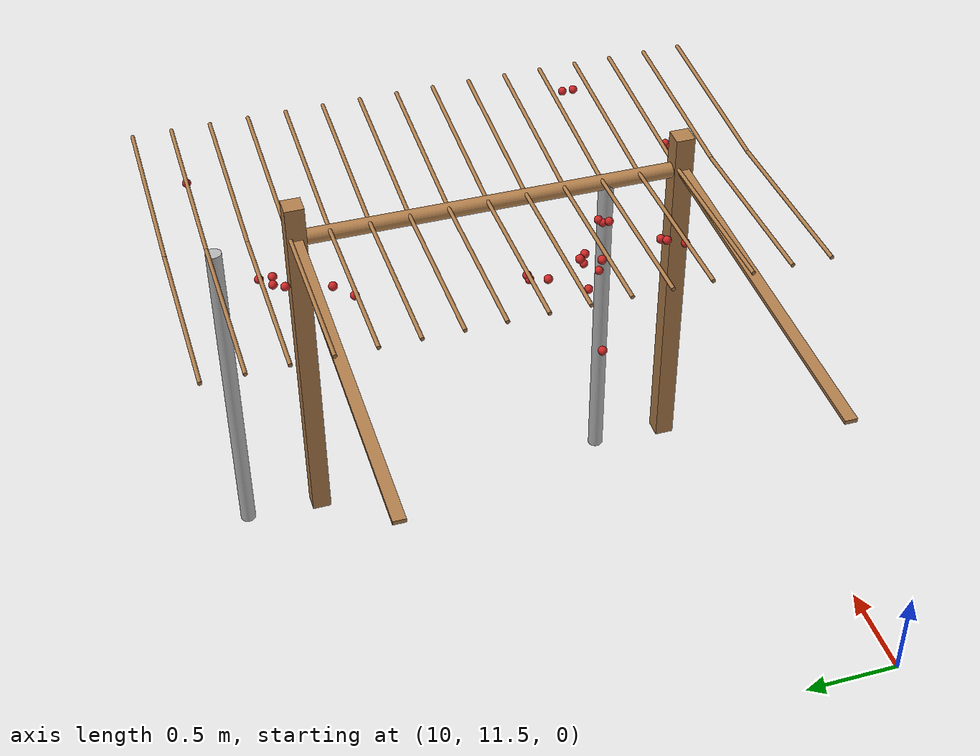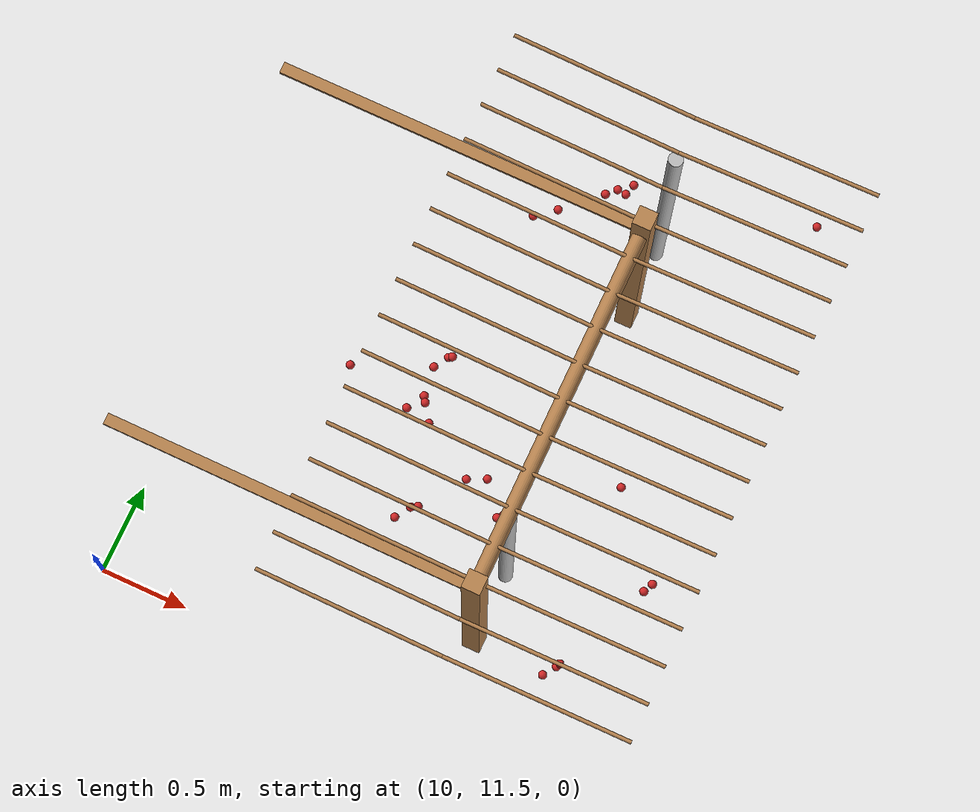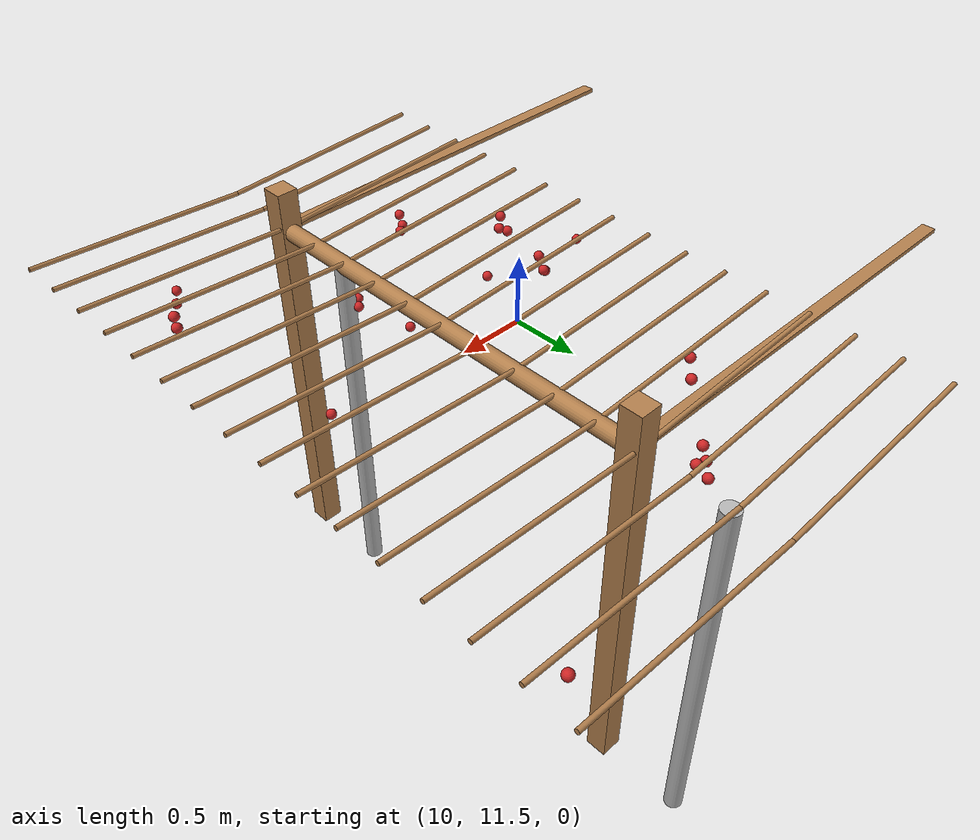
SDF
<sdf version="1.4">
 <model name="pergola">
  <include><name>post_72</name><pose>12.0 12.0 0 0 0 0</pose><uri>model://post</uri></include>
  <include><name>post_73</name><pose>12.0 14.0 0 0 0 0</pose><uri>model://post</uri></include>
  <link name="beam_61">
   <pose>11.0 12.0 1.81 0 0 0</pose>
   <collision name="collision"><geometry><box><size>2.0 0.06 0.02</size></box></geometry></collision>
   <visual name="visual">
    <geometry><box><size>2.0 0.06 0.02</size></box></geometry>
    <material><script><name>Gazebo/Wood</name></script></material>
   </visual>
   <inertial>
    <mass>5</mass>
    <inertia>
     <ixx>0.0016666666666666668</ixx>
     <ixy>0.0</ixy>
     <ixz>0.0</ixz>
     <iyy>1.6681666666666664</iyy>
     <iyz>0.0</iyz>
     <izz>1.6668333333333332</izz>
    </inertia>
   </inertial>
  </link>
  <link name="beam_62">
   <pose>11.0 14.0 1.81 0 0 0</pose>
   <collision name="collision"><geometry><box><size>2.0 0.06 0.02</size></box></geometry></collision>
   <visual name="visual">
    <geometry><box><size>2.0 0.06 0.02</size></box></geometry>
    <material><script><name>Gazebo/Wood</name></script></material>
   </visual>
   <inertial>
    <mass>5</mass>
    <inertia>
     <ixx>0.0016666666666666668</ixx>
     <ixy>0.0</ixy>
     <ixz>0.0</ixz>
     <iyy>1.6681666666666664</iyy>
     <iyz>0.0</iyz>
     <izz>1.6668333333333332</izz>
    </inertia>
   </inertial>
  </link>
  <include><name>tree_66</name><pose>12.0 12.4 0 0 0 0</pose><uri>model://tree_trunk</uri></include>
  <include><name>tree_67</name><pose>12.0 14.4 0 0 0 0</pose><uri>model://tree_trunk</uri></include>
  <link name="baseBranch_66">
   <pose>12.0 13.0 1.8 1.5707963267948966 0 0</pose>
   <collision name="collision">
    <geometry><cylinder><radius>0.04</radius><length>1.94</length></cylinder></geometry>
   </collision>
   <visual name="visual">
    <geometry><cylinder><radius>0.04</radius><length>1.94</length></cylinder></geometry>
    <material><script><name>Gazebo/WoodFloor</name></script></material>
   </visual>
   <inertial>
    <mass>10</mass>
    <inertia>
     <ixx>3.140333333333333</ixx>
     <ixy>0.0</ixy>
     <ixz>0.0</ixz>
     <iyy>3.140333333333333</iyy>
     <iyz>0.0</iyz>
     <izz>0.008</izz>
    </inertia>
   </inertial>
  </link>
  <link name="vine_1117">
   <pose>11.5 11.63 1.85 0 -1.5208379310729538 0</pose>
   <collision name="collision">
    <geometry><cylinder><radius>0.01</radius><length>1.0012492197250393</length></cylinder></geometry>
   </collision>
   <visual name="visual">
    <geometry><cylinder><radius>0.01</radius><length>1.0012492197250393</length></cylinder></geometry>
    <material><script><name>Gazebo/WoodFloor</name></script></material>
   </visual>
   <inertial>
    <mass>5</mass>
    <inertia>
     <ixx>0.41783333333333345</ixx>
     <ixy>0.0</ixy>
     <ixz>0.0</ixz>
     <iyy>0.41783333333333345</iyy>
     <iyz>0.0</iyz>
     <izz>0.00025</izz>
    </inertia>
   </inertial>
  </link>
  <link name="vine_1119">
   <pose>11.5 11.83 1.85 0 -1.5208379310729538 0</pose>
   <collision name="collision">
    <geometry><cylinder><radius>0.01</radius><length>1.0012492197250393</length></cylinder></geometry>
   </collision>
   <visual name="visual">
    <geometry><cylinder><radius>0.01</radius><length>1.0012492197250393</length></cylinder></geometry>
    <material><script><name>Gazebo/WoodFloor</name></script></material>
   </visual>
   <inertial>
    <mass>5</mass>
    <inertia>
     <ixx>0.41783333333333345</ixx>
     <ixy>0.0</ixy>
     <ixz>0.0</ixz>
     <iyy>0.41783333333333345</iyy>
     <iyz>0.0</iyz>
     <izz>0.00025</izz>
    </inertia>
   </inertial>
  </link>
  <link name="vine_1121">
   <pose>11.5 12.03 1.85 0 -1.5208379310729538 0</pose>
   <collision name="collision">
    <geometry><cylinder><radius>0.01</radius><length>1.0012492197250393</length></cylinder></geometry>
   </collision>
   <visual name="visual">
    <geometry><cylinder><radius>0.01</radius><length>1.0012492197250393</length></cylinder></geometry>
    <material><script><name>Gazebo/WoodFloor</name></script></material>
   </visual>
   <inertial>
    <mass>5</mass>
    <inertia>
     <ixx>0.41783333333333345</ixx>
     <ixy>0.0</ixy>
     <ixz>0.0</ixz>
     <iyy>0.41783333333333345</iyy>
     <iyz>0.0</iyz>
     <izz>0.00025</izz>
    </inertia>
   </inertial>
  </link>
  <link name="vine_1123">
   <pose>11.5 12.23 1.85 0 -1.5208379310729538 0</pose>
   <collision name="collision">
    <geometry><cylinder><radius>0.01</radius><length>1.0012492197250393</length></cylinder></geometry>
   </collision>
   <visual name="visual">
    <geometry><cylinder><radius>0.01</radius><length>1.0012492197250393</length></cylinder></geometry>
    <material><script><name>Gazebo/WoodFloor</name></script></material>
   </visual>
   <inertial>
    <mass>5</mass>
    <inertia>
     <ixx>0.41783333333333345</ixx>
     <ixy>0.0</ixy>
     <ixz>0.0</ixz>
     <iyy>0.41783333333333345</iyy>
     <iyz>0.0</iyz>
     <izz>0.00025</izz>
    </inertia>
   </inertial>
  </link>
  <link name="vine_1125">
   <pose>11.5 12.43 1.85 0 -1.5208379310729538 0</pose>
   <collision name="collision">
    <geometry><cylinder><radius>0.01</radius><length>1.0012492197250393</length></cylinder></geometry>
   </collision>
   <visual name="visual">
    <geometry><cylinder><radius>0.01</radius><length>1.0012492197250393</length></cylinder></geometry>
    <material><script><name>Gazebo/WoodFloor</name></script></material>
   </visual>
   <inertial>
    <mass>5</mass>
    <inertia>
     <ixx>0.41783333333333345</ixx>
     <ixy>0.0</ixy>
     <ixz>0.0</ixz>
     <iyy>0.41783333333333345</iyy>
     <iyz>0.0</iyz>
     <izz>0.00025</izz>
    </inertia>
   </inertial>
  </link>
  <link name="vine_1127">
   <pose>11.5 12.63 1.85 0 -1.5208379310729538 0</pose>
   <collision name="collision">
    <geometry><cylinder><radius>0.01</radius><length>1.0012492197250393</length></cylinder></geometry>
   </collision>
   <visual name="visual">
    <geometry><cylinder><radius>0.01</radius><length>1.0012492197250393</length></cylinder></geometry>
    <material><script><name>Gazebo/WoodFloor</name></script></material>
   </visual>
   <inertial>
    <mass>5</mass>
    <inertia>
     <ixx>0.41783333333333345</ixx>
     <ixy>0.0</ixy>
     <ixz>0.0</ixz>
     <iyy>0.41783333333333345</iyy>
     <iyz>0.0</iyz>
     <izz>0.00025</izz>
    </inertia>
   </inertial>
  </link>
  <link name="vine_1129">
   <pose>11.5 12.83 1.85 0 -1.5208379310729538 0</pose>
   <collision name="collision">
    <geometry><cylinder><radius>0.01</radius><length>1.0012492197250393</length></cylinder></geometry>
   </collision>
   <visual name="visual">
    <geometry><cylinder><radius>0.01</radius><length>1.0012492197250393</length></cylinder></geometry>
    <material><script><name>Gazebo/WoodFloor</name></script></material>
   </visual>
   <inertial>
    <mass>5</mass>
    <inertia>
     <ixx>0.41783333333333345</ixx>
     <ixy>0.0</ixy>
     <ixz>0.0</ixz>
     <iyy>0.41783333333333345</iyy>
     <iyz>0.0</iyz>
     <izz>0.00025</izz>
    </inertia>
   </inertial>
  </link>
  <link name="vine_1131">
   <pose>11.5 13.03 1.85 0 -1.5208379310729538 0</pose>
   <collision name="collision">
    <geometry><cylinder><radius>0.01</radius><length>1.0012492197250393</length></cylinder></geometry>
   </collision>
   <visual name="visual">
    <geometry><cylinder><radius>0.01</radius><length>1.0012492197250393</length></cylinder></geometry>
    <material><script><name>Gazebo/WoodFloor</name></script></material>
   </visual>
   <inertial>
    <mass>5</mass>
    <inertia>
     <ixx>0.41783333333333345</ixx>
     <ixy>0.0</ixy>
     <ixz>0.0</ixz>
     <iyy>0.41783333333333345</iyy>
     <iyz>0.0</iyz>
     <izz>0.00025</izz>
    </inertia>
   </inertial>
  </link>
  <link name="vine_1133">
   <pose>11.5 13.23 1.85 0 -1.5208379310729538 0</pose>
   <collision name="collision">
    <geometry><cylinder><radius>0.01</radius><length>1.0012492197250393</length></cylinder></geometry>
   </collision>
   <visual name="visual">
    <geometry><cylinder><radius>0.01</radius><length>1.0012492197250393</length></cylinder></geometry>
    <material><script><name>Gazebo/WoodFloor</name></script></material>
   </visual>
   <inertial>
    <mass>5</mass>
    <inertia>
     <ixx>0.41783333333333345</ixx>
     <ixy>0.0</ixy>
     <ixz>0.0</ixz>
     <iyy>0.41783333333333345</iyy>
     <iyz>0.0</iyz>
     <izz>0.00025</izz>
    </inertia>
   </inertial>
  </link>
  <link name="vine_1135">
   <pose>11.5 13.43 1.85 0 -1.5208379310729538 0</pose>
   <collision name="collision">
    <geometry><cylinder><radius>0.01</radius><length>1.0012492197250393</length></cylinder></geometry>
   </collision>
   <visual name="visual">
    <geometry><cylinder><radius>0.01</radius><length>1.0012492197250393</length></cylinder></geometry>
    <material><script><name>Gazebo/WoodFloor</name></script></material>
   </visual>
   <inertial>
    <mass>5</mass>
    <inertia>
     <ixx>0.41783333333333345</ixx>
     <ixy>0.0</ixy>
     <ixz>0.0</ixz>
     <iyy>0.41783333333333345</iyy>
     <iyz>0.0</iyz>
     <izz>0.00025</izz>
    </inertia>
   </inertial>
  </link>
  <link name="vine_1137">
   <pose>11.5 13.63 1.85 0 -1.5208379310729538 0</pose>
   <collision name="collision">
    <geometry><cylinder><radius>0.01</radius><length>1.0012492197250393</length></cylinder></geometry>
   </collision>
   <visual name="visual">
    <geometry><cylinder><radius>0.01</radius><length>1.0012492197250393</length></cylinder></geometry>
    <material><script><name>Gazebo/WoodFloor</name></script></material>
   </visual>
   <inertial>
    <mass>5</mass>
    <inertia>
     <ixx>0.41783333333333345</ixx>
     <ixy>0.0</ixy>
     <ixz>0.0</ixz>
     <iyy>0.41783333333333345</iyy>
     <iyz>0.0</iyz>
     <izz>0.00025</izz>
    </inertia>
   </inertial>
  </link>
  <link name="vine_1139">
   <pose>11.5 13.83 1.85 0 -1.5208379310729538 0</pose>
   <collision name="collision">
    <geometry><cylinder><radius>0.01</radius><length>1.0012492197250393</length></cylinder></geometry>
   </collision>
   <visual name="visual">
    <geometry><cylinder><radius>0.01</radius><length>1.0012492197250393</length></cylinder></geometry>
    <material><script><name>Gazebo/WoodFloor</name></script></material>
   </visual>
   <inertial>
    <mass>5</mass>
    <inertia>
     <ixx>0.41783333333333345</ixx>
     <ixy>0.0</ixy>
     <ixz>0.0</ixz>
     <iyy>0.41783333333333345</iyy>
     <iyz>0.0</iyz>
     <izz>0.00025</izz>
    </inertia>
   </inertial>
  </link>
  <link name="vine_1141">
   <pose>11.5 14.03 1.85 0 -1.5208379310729538 0</pose>
   <collision name="collision">
    <geometry><cylinder><radius>0.01</radius><length>1.0012492197250393</length></cylinder></geometry>
   </collision>
   <visual name="visual">
    <geometry><cylinder><radius>0.01</radius><length>1.0012492197250393</length></cylinder></geometry>
    <material><script><name>Gazebo/WoodFloor</name></script></material>
   </visual>
   <inertial>
    <mass>5</mass>
    <inertia>
     <ixx>0.41783333333333345</ixx>
     <ixy>0.0</ixy>
     <ixz>0.0</ixz>
     <iyy>0.41783333333333345</iyy>
     <iyz>0.0</iyz>
     <izz>0.00025</izz>
    </inertia>
   </inertial>
  </link>
  <link name="vine_1143">
   <pose>11.5 14.23 1.85 0 -1.5208379310729538 0</pose>
   <collision name="collision">
    <geometry><cylinder><radius>0.01</radius><length>1.0012492197250393</length></cylinder></geometry>
   </collision>
   <visual name="visual">
    <geometry><cylinder><radius>0.01</radius><length>1.0012492197250393</length></cylinder></geometry>
    <material><script><name>Gazebo/WoodFloor</name></script></material>
   </visual>
   <inertial>
    <mass>5</mass>
    <inertia>
     <ixx>0.41783333333333345</ixx>
     <ixy>0.0</ixy>
     <ixz>0.0</ixz>
     <iyy>0.41783333333333345</iyy>
     <iyz>0.0</iyz>
     <izz>0.00025</izz>
    </inertia>
   </inertial>
  </link>
  <link name="vine_1145">
   <pose>11.5 14.43 1.85 0 -1.5208379310729538 0</pose>
   <collision name="collision">
    <geometry><cylinder><radius>0.01</radius><length>1.0012492197250393</length></cylinder></geometry>
   </collision>
   <visual name="visual">
    <geometry><cylinder><radius>0.01</radius><length>1.0012492197250393</length></cylinder></geometry>
    <material><script><name>Gazebo/WoodFloor</name></script></material>
   </visual>
   <inertial>
    <mass>5</mass>
    <inertia>
     <ixx>0.41783333333333345</ixx>
     <ixy>0.0</ixy>
     <ixz>0.0</ixz>
     <iyy>0.41783333333333345</iyy>
     <iyz>0.0</iyz>
     <izz>0.00025</izz>
    </inertia>
   </inertial>
  </link>
  <link name="vine_1147">
   <pose>11.5 14.63 1.85 0 -1.5208379310729538 0</pose>
   <collision name="collision">
    <geometry><cylinder><radius>0.01</radius><length>1.0012492197250393</length></cylinder></geometry>
   </collision>
   <visual name="visual">
    <geometry><cylinder><radius>0.01</radius><length>1.0012492197250393</length></cylinder></geometry>
    <material><script><name>Gazebo/WoodFloor</name></script></material>
   </visual>
   <inertial>
    <mass>5</mass>
    <inertia>
     <ixx>0.41783333333333345</ixx>
     <ixy>0.0</ixy>
     <ixz>0.0</ixz>
     <iyy>0.41783333333333345</iyy>
     <iyz>0.0</iyz>
     <izz>0.00025</izz>
    </inertia>
   </inertial>
  </link>
  <link name="vine_1316">
   <pose>12.5 11.63 1.85 0 1.5208379310729538 0</pose>
   <collision name="collision">
    <geometry><cylinder><radius>0.01</radius><length>1.0012492197250393</length></cylinder></geometry>
   </collision>
   <visual name="visual">
    <geometry><cylinder><radius>0.01</radius><length>1.0012492197250393</length></cylinder></geometry>
    <material><script><name>Gazebo/WoodFloor</name></script></material>
   </visual>
   <inertial>
    <mass>5</mass>
    <inertia>
     <ixx>0.41783333333333345</ixx>
     <ixy>0.0</ixy>
     <ixz>0.0</ixz>
     <iyy>0.41783333333333345</iyy>
     <iyz>0.0</iyz>
     <izz>0.00025</izz>
    </inertia>
   </inertial>
  </link>
  <link name="vine_1318">
   <pose>12.5 11.83 1.85 0 1.5208379310729538 0</pose>
   <collision name="collision">
    <geometry><cylinder><radius>0.01</radius><length>1.0012492197250393</length></cylinder></geometry>
   </collision>
   <visual name="visual">
    <geometry><cylinder><radius>0.01</radius><length>1.0012492197250393</length></cylinder></geometry>
    <material><script><name>Gazebo/WoodFloor</name></script></material>
   </visual>
   <inertial>
    <mass>5</mass>
    <inertia>
     <ixx>0.41783333333333345</ixx>
     <ixy>0.0</ixy>
     <ixz>0.0</ixz>
     <iyy>0.41783333333333345</iyy>
     <iyz>0.0</iyz>
     <izz>0.00025</izz>
    </inertia>
   </inertial>
  </link>
  <link name="vine_1320">
   <pose>12.5 12.03 1.85 0 1.5208379310729538 0</pose>
   <collision name="collision">
    <geometry><cylinder><radius>0.01</radius><length>1.0012492197250393</length></cylinder></geometry>
   </collision>
   <visual name="visual">
    <geometry><cylinder><radius>0.01</radius><length>1.0012492197250393</length></cylinder></geometry>
    <material><script><name>Gazebo/WoodFloor</name></script></material>
   </visual>
   <inertial>
    <mass>5</mass>
    <inertia>
     <ixx>0.41783333333333345</ixx>
     <ixy>0.0</ixy>
     <ixz>0.0</ixz>
     <iyy>0.41783333333333345</iyy>
     <iyz>0.0</iyz>
     <izz>0.00025</izz>
    </inertia>
   </inertial>
  </link>
  <link name="vine_1322">
   <pose>12.5 12.23 1.85 0 1.5208379310729538 0</pose>
   <collision name="collision">
    <geometry><cylinder><radius>0.01</radius><length>1.0012492197250393</length></cylinder></geometry>
   </collision>
   <visual name="visual">
    <geometry><cylinder><radius>0.01</radius><length>1.0012492197250393</length></cylinder></geometry>
    <material><script><name>Gazebo/WoodFloor</name></script></material>
   </visual>
   <inertial>
    <mass>5</mass>
    <inertia>
     <ixx>0.41783333333333345</ixx>
     <ixy>0.0</ixy>
     <ixz>0.0</ixz>
     <iyy>0.41783333333333345</iyy>
     <iyz>0.0</iyz>
     <izz>0.00025</izz>
    </inertia>
   </inertial>
  </link>
  <link name="vine_1324">
   <pose>12.5 12.43 1.85 0 1.5208379310729538 0</pose>
   <collision name="collision">
    <geometry><cylinder><radius>0.01</radius><length>1.0012492197250393</length></cylinder></geometry>
   </collision>
   <visual name="visual">
    <geometry><cylinder><radius>0.01</radius><length>1.0012492197250393</length></cylinder></geometry>
    <material><script><name>Gazebo/WoodFloor</name></script></material>
   </visual>
   <inertial>
    <mass>5</mass>
    <inertia>
     <ixx>0.41783333333333345</ixx>
     <ixy>0.0</ixy>
     <ixz>0.0</ixz>
     <iyy>0.41783333333333345</iyy>
     <iyz>0.0</iyz>
     <izz>0.00025</izz>
    </inertia>
   </inertial>
  </link>
  <link name="vine_1326">
   <pose>12.5 12.63 1.85 0 1.5208379310729538 0</pose>
   <collision name="collision">
    <geometry><cylinder><radius>0.01</radius><length>1.0012492197250393</length></cylinder></geometry>
   </collision>
   <visual name="visual">
    <geometry><cylinder><radius>0.01</radius><length>1.0012492197250393</length></cylinder></geometry>
    <material><script><name>Gazebo/WoodFloor</name></script></material>
   </visual>
   <inertial>
    <mass>5</mass>
    <inertia>
     <ixx>0.41783333333333345</ixx>
     <ixy>0.0</ixy>
     <ixz>0.0</ixz>
     <iyy>0.41783333333333345</iyy>
     <iyz>0.0</iyz>
     <izz>0.00025</izz>
    </inertia>
   </inertial>
  </link>
  <link name="vine_1328">
   <pose>12.5 12.83 1.85 0 1.5208379310729538 0</pose>
   <collision name="collision">
    <geometry><cylinder><radius>0.01</radius><length>1.0012492197250393</length></cylinder></geometry>
   </collision>
   <visual name="visual">
    <geometry><cylinder><radius>0.01</radius><length>1.0012492197250393</length></cylinder></geometry>
    <material><script><name>Gazebo/WoodFloor</name></script></material>
   </visual>
   <inertial>
    <mass>5</mass>
    <inertia>
     <ixx>0.41783333333333345</ixx>
     <ixy>0.0</ixy>
     <ixz>0.0</ixz>
     <iyy>0.41783333333333345</iyy>
     <iyz>0.0</iyz>
     <izz>0.00025</izz>
    </inertia>
   </inertial>
  </link>
  <link name="vine_1330">
   <pose>12.5 13.03 1.85 0 1.5208379310729538 0</pose>
   <collision name="collision">
    <geometry><cylinder><radius>0.01</radius><length>1.0012492197250393</length></cylinder></geometry>
   </collision>
   <visual name="visual">
    <geometry><cylinder><radius>0.01</radius><length>1.0012492197250393</length></cylinder></geometry>
    <material><script><name>Gazebo/WoodFloor</name></script></material>
   </visual>
   <inertial>
    <mass>5</mass>
    <inertia>
     <ixx>0.41783333333333345</ixx>
     <ixy>0.0</ixy>
     <ixz>0.0</ixz>
     <iyy>0.41783333333333345</iyy>
     <iyz>0.0</iyz>
     <izz>0.00025</izz>
    </inertia>
   </inertial>
  </link>
  <link name="vine_1332">
   <pose>12.5 13.23 1.85 0 1.5208379310729538 0</pose>
   <collision name="collision">
    <geometry><cylinder><radius>0.01</radius><length>1.0012492197250393</length></cylinder></geometry>
   </collision>
   <visual name="visual">
    <geometry><cylinder><radius>0.01</radius><length>1.0012492197250393</length></cylinder></geometry>
    <material><script><name>Gazebo/WoodFloor</name></script></material>
   </visual>
   <inertial>
    <mass>5</mass>
    <inertia>
     <ixx>0.41783333333333345</ixx>
     <ixy>0.0</ixy>
     <ixz>0.0</ixz>
     <iyy>0.41783333333333345</iyy>
     <iyz>0.0</iyz>
     <izz>0.00025</izz>
    </inertia>
   </inertial>
  </link>
  <link name="vine_1334">
   <pose>12.5 13.43 1.85 0 1.5208379310729538 0</pose>
   <collision name="collision">
    <geometry><cylinder><radius>0.01</radius><length>1.0012492197250393</length></cylinder></geometry>
   </collision>
   <visual name="visual">
    <geometry><cylinder><radius>0.01</radius><length>1.0012492197250393</length></cylinder></geometry>
    <material><script><name>Gazebo/WoodFloor</name></script></material>
   </visual>
   <inertial>
    <mass>5</mass>
    <inertia>
     <ixx>0.41783333333333345</ixx>
     <ixy>0.0</ixy>
     <ixz>0.0</ixz>
     <iyy>0.41783333333333345</iyy>
     <iyz>0.0</iyz>
     <izz>0.00025</izz>
    </inertia>
   </inertial>
  </link>
  <link name="vine_1336">
   <pose>12.5 13.63 1.85 0 1.5208379310729538 0</pose>
   <collision name="collision">
    <geometry><cylinder><radius>0.01</radius><length>1.0012492197250393</length></cylinder></geometry>
   </collision>
   <visual name="visual">
    <geometry><cylinder><radius>0.01</radius><length>1.0012492197250393</length></cylinder></geometry>
    <material><script><name>Gazebo/WoodFloor</name></script></material>
   </visual>
   <inertial>
    <mass>5</mass>
    <inertia>
     <ixx>0.41783333333333345</ixx>
     <ixy>0.0</ixy>
     <ixz>0.0</ixz>
     <iyy>0.41783333333333345</iyy>
     <iyz>0.0</iyz>
     <izz>0.00025</izz>
    </inertia>
   </inertial>
  </link>
  <link name="vine_1338">
   <pose>12.5 13.83 1.85 0 1.5208379310729538 0</pose>
   <collision name="collision">
    <geometry><cylinder><radius>0.01</radius><length>1.0012492197250393</length></cylinder></geometry>
   </collision>
   <visual name="visual">
    <geometry><cylinder><radius>0.01</radius><length>1.0012492197250393</length></cylinder></geometry>
    <material><script><name>Gazebo/WoodFloor</name></script></material>
   </visual>
   <inertial>
    <mass>5</mass>
    <inertia>
     <ixx>0.41783333333333345</ixx>
     <ixy>0.0</ixy>
     <ixz>0.0</ixz>
     <iyy>0.41783333333333345</iyy>
     <iyz>0.0</iyz>
     <izz>0.00025</izz>
    </inertia>
   </inertial>
  </link>
  <link name="vine_1340">
   <pose>12.5 14.03 1.85 0 1.5208379310729538 0</pose>
   <collision name="collision">
    <geometry><cylinder><radius>0.01</radius><length>1.0012492197250393</length></cylinder></geometry>
   </collision>
   <visual name="visual">
    <geometry><cylinder><radius>0.01</radius><length>1.0012492197250393</length></cylinder></geometry>
    <material><script><name>Gazebo/WoodFloor</name></script></material>
   </visual>
   <inertial>
    <mass>5</mass>
    <inertia>
     <ixx>0.41783333333333345</ixx>
     <ixy>0.0</ixy>
     <ixz>0.0</ixz>
     <iyy>0.41783333333333345</iyy>
     <iyz>0.0</iyz>
     <izz>0.00025</izz>
    </inertia>
   </inertial>
  </link>
  <link name="vine_1342">
   <pose>12.5 14.23 1.85 0 1.5208379310729538 0</pose>
   <collision name="collision">
    <geometry><cylinder><radius>0.01</radius><length>1.0012492197250393</length></cylinder></geometry>
   </collision>
   <visual name="visual">
    <geometry><cylinder><radius>0.01</radius><length>1.0012492197250393</length></cylinder></geometry>
    <material><script><name>Gazebo/WoodFloor</name></script></material>
   </visual>
   <inertial>
    <mass>5</mass>
    <inertia>
     <ixx>0.41783333333333345</ixx>
     <ixy>0.0</ixy>
     <ixz>0.0</ixz>
     <iyy>0.41783333333333345</iyy>
     <iyz>0.0</iyz>
     <izz>0.00025</izz>
    </inertia>
   </inertial>
  </link>
  <link name="vine_1344">
   <pose>12.5 14.43 1.85 0 1.5208379310729538 0</pose>
   <collision name="collision">
    <geometry><cylinder><radius>0.01</radius><length>1.0012492197250393</length></cylinder></geometry>
   </collision>
   <visual name="visual">
    <geometry><cylinder><radius>0.01</radius><length>1.0012492197250393</length></cylinder></geometry>
    <material><script><name>Gazebo/WoodFloor</name></script></material>
   </visual>
   <inertial>
    <mass>5</mass>
    <inertia>
     <ixx>0.41783333333333345</ixx>
     <ixy>0.0</ixy>
     <ixz>0.0</ixz>
     <iyy>0.41783333333333345</iyy>
     <iyz>0.0</iyz>
     <izz>0.00025</izz>
    </inertia>
   </inertial>
  </link>
  <link name="vine_1346">
   <pose>12.5 14.63 1.85 0 1.5208379310729538 0</pose>
   <collision name="collision">
    <geometry><cylinder><radius>0.01</radius><length>1.0012492197250393</length></cylinder></geometry>
   </collision>
   <visual name="visual">
    <geometry><cylinder><radius>0.01</radius><length>1.0012492197250393</length></cylinder></geometry>
    <material><script><name>Gazebo/WoodFloor</name></script></material>
   </visual>
   <inertial>
    <mass>5</mass>
    <inertia>
     <ixx>0.41783333333333345</ixx>
     <ixy>0.0</ixy>
     <ixz>0.0</ixz>
     <iyy>0.41783333333333345</iyy>
     <iyz>0.0</iyz>
     <izz>0.00025</izz>
    </inertia>
   </inertial>
  </link>
  <link name="fruit_34">
   <pose>11.708403868549098 12.530291648072629 1.4794381392655462 0 0 0</pose>
   <collision name="fruit_collision_34"><geometry><sphere><radius>0.022</radius></sphere></geometry></collision>
   <visual name="visual">
    <geometry><sphere><radius>0.022</radius></sphere></geometry>
    <material><script><name>Gazebo/Red</name></script></material>
   </visual>
   <inertial>
    <mass>0.05</mass>
    <inertia>
     <ixx>9.679999999999999e-06</ixx>
     <ixy>0.0</ixy>
     <ixz>0.0</ixz>
     <iyy>9.679999999999999e-06</iyy>
     <iyz>0.0</iyz>
     <izz>9.679999999999999e-06</izz>
    </inertia>
   </inertial>
   <sensor name="fruit_contact_34" type="contact">
    <contact><collision>fruit_collision_34</collision></contact>
   </sensor>
  </link>
  <link name="fruit_121">
   <pose>11.43036669884049 12.68669352068999 1.607998956808877 0 0 0</pose>
   <collision name="fruit_collision_121"><geometry><sphere><radius>0.022</radius></sphere></geometry></collision>
   <visual name="visual">
    <geometry><sphere><radius>0.022</radius></sphere></geometry>
    <material><script><name>Gazebo/Red</name></script></material>
   </visual>
   <inertial>
    <mass>0.05</mass>
    <inertia>
     <ixx>9.679999999999999e-06</ixx>
     <ixy>0.0</ixy>
     <ixz>0.0</ixz>
     <iyy>9.679999999999999e-06</iyy>
     <iyz>0.0</iyz>
     <izz>9.679999999999999e-06</izz>
    </inertia>
   </inertial>
   <sensor name="fruit_contact_121" type="contact">
    <contact><collision>fruit_collision_121</collision></contact>
   </sensor>
  </link>
  <link name="fruit_133">
   <pose>12.46880548143 11.782770565958723 1.5895246957868223 0 0 0</pose>
   <collision name="fruit_collision_133"><geometry><sphere><radius>0.022</radius></sphere></geometry></collision>
   <visual name="visual">
    <geometry><sphere><radius>0.022</radius></sphere></geometry>
    <material><script><name>Gazebo/Red</name></script></material>
   </visual>
   <inertial>
    <mass>0.05</mass>
    <inertia>
     <ixx>9.679999999999999e-06</ixx>
     <ixy>0.0</ixy>
     <ixz>0.0</ixz>
     <iyy>9.679999999999999e-06</iyy>
     <iyz>0.0</iyz>
     <izz>9.679999999999999e-06</izz>
    </inertia>
   </inertial>
   <sensor name="fruit_contact_133" type="contact">
    <contact><collision>fruit_collision_133</collision></contact>
   </sensor>
  </link>
  <link name="fruit_136">
   <pose>11.937637026457883 12.39740999400364 1.5940042944724833 0 0 0</pose>
   <collision name="fruit_collision_136"><geometry><sphere><radius>0.022</radius></sphere></geometry></collision>
   <visual name="visual">
    <geometry><sphere><radius>0.022</radius></sphere></geometry>
    <material><script><name>Gazebo/Red</name></script></material>
   </visual>
   <inertial>
    <mass>0.05</mass>
    <inertia>
     <ixx>9.679999999999999e-06</ixx>
     <ixy>0.0</ixy>
     <ixz>0.0</ixz>
     <iyy>9.679999999999999e-06</iyy>
     <iyz>0.0</iyz>
     <izz>9.679999999999999e-06</izz>
    </inertia>
   </inertial>
   <sensor name="fruit_contact_136" type="contact">
    <contact><collision>fruit_collision_136</collision></contact>
   </sensor>
  </link>
  <link name="fruit_145">
   <pose>12.429058940838688 12.817756788543257 1.4853232013703939 0 0 0</pose>
   <collision name="fruit_collision_145"><geometry><sphere><radius>0.022</radius></sphere></geometry></collision>
   <visual name="visual">
    <geometry><sphere><radius>0.022</radius></sphere></geometry>
    <material><script><name>Gazebo/Red</name></script></material>
   </visual>
   <inertial>
    <mass>0.05</mass>
    <inertia>
     <ixx>9.679999999999999e-06</ixx>
     <ixy>0.0</ixy>
     <ixz>0.0</ixz>
     <iyy>9.679999999999999e-06</iyy>
     <iyz>0.0</iyz>
     <izz>9.679999999999999e-06</izz>
    </inertia>
   </inertial>
   <sensor name="fruit_contact_145" type="contact">
    <contact><collision>fruit_collision_145</collision></contact>
   </sensor>
  </link>
  <link name="fruit_160">
   <pose>12.781626549262871 14.40947211802664 1.6842967133208189 0 0 0</pose>
   <collision name="fruit_collision_160"><geometry><sphere><radius>0.022</radius></sphere></geometry></collision>
   <visual name="visual">
    <geometry><sphere><radius>0.022</radius></sphere></geometry>
    <material><script><name>Gazebo/Red</name></script></material>
   </visual>
   <inertial>
    <mass>0.05</mass>
    <inertia>
     <ixx>9.679999999999999e-06</ixx>
     <ixy>0.0</ixy>
     <ixz>0.0</ixz>
     <iyy>9.679999999999999e-06</iyy>
     <iyz>0.0</iyz>
     <izz>9.679999999999999e-06</izz>
    </inertia>
   </inertial>
   <sensor name="fruit_contact_160" type="contact">
    <contact><collision>fruit_collision_160</collision></contact>
   </sensor>
  </link>
  <link name="fruit_182">
   <pose>11.47471117038858 13.828492704431946 1.8089581007391153 0 0 0</pose>
   <collision name="fruit_collision_182"><geometry><sphere><radius>0.022</radius></sphere></geometry></collision>
   <visual name="visual">
    <geometry><sphere><radius>0.022</radius></sphere></geometry>
    <material><script><name>Gazebo/Red</name></script></material>
   </visual>
   <inertial>
    <mass>0.05</mass>
    <inertia>
     <ixx>9.679999999999999e-06</ixx>
     <ixy>0.0</ixy>
     <ixz>0.0</ixz>
     <iyy>9.679999999999999e-06</iyy>
     <iyz>0.0</iyz>
     <izz>9.679999999999999e-06</izz>
    </inertia>
   </inertial>
   <sensor name="fruit_contact_182" type="contact">
    <contact><collision>fruit_collision_182</collision></contact>
   </sensor>
  </link>
  <link name="fruit_236">
   <pose>11.350116059417624 12.921338570390295 1.7859045830433538 0 0 0</pose>
   <collision name="fruit_collision_236"><geometry><sphere><radius>0.022</radius></sphere></geometry></collision>
   <visual name="visual">
    <geometry><sphere><radius>0.022</radius></sphere></geometry>
    <material><script><name>Gazebo/Red</name></script></material>
   </visual>
   <inertial>
    <mass>0.05</mass>
    <inertia>
     <ixx>9.679999999999999e-06</ixx>
     <ixy>0.0</ixy>
     <ixz>0.0</ixz>
     <iyy>9.679999999999999e-06</iyy>
     <iyz>0.0</iyz>
     <izz>9.679999999999999e-06</izz>
    </inertia>
   </inertial>
   <sensor name="fruit_contact_236" type="contact">
    <contact><collision>fruit_collision_236</collision></contact>
   </sensor>
  </link>
  <link name="fruit_239">
   <pose>11.747665613182532 14.107816253896994 1.7197543796968364 0 0 0</pose>
   <collision name="fruit_collision_239"><geometry><sphere><radius>0.022</radius></sphere></geometry></collision>
   <visual name="visual">
    <geometry><sphere><radius>0.022</radius></sphere></geometry>
    <material><script><name>Gazebo/Red</name></script></material>
   </visual>
   <inertial>
    <mass>0.05</mass>
    <inertia>
     <ixx>9.679999999999999e-06</ixx>
     <ixy>0.0</ixy>
     <ixz>0.0</ixz>
     <iyy>9.679999999999999e-06</iyy>
     <iyz>0.0</iyz>
     <izz>9.679999999999999e-06</izz>
    </inertia>
   </inertial>
   <sensor name="fruit_contact_239" type="contact">
    <contact><collision>fruit_collision_239</collision></contact>
   </sensor>
  </link>
  <link name="fruit_274">
   <pose>11.490448095605906 12.166206591244112 1.7277936268585643 0 0 0</pose>
   <collision name="fruit_collision_274"><geometry><sphere><radius>0.022</radius></sphere></geometry></collision>
   <visual name="visual">
    <geometry><sphere><radius>0.022</radius></sphere></geometry>
    <material><script><name>Gazebo/Red</name></script></material>
   </visual>
   <inertial>
    <mass>0.05</mass>
    <inertia>
     <ixx>9.679999999999999e-06</ixx>
     <ixy>0.0</ixy>
     <ixz>0.0</ixz>
     <iyy>9.679999999999999e-06</iyy>
     <iyz>0.0</iyz>
     <izz>9.679999999999999e-06</izz>
    </inertia>
   </inertial>
   <sensor name="fruit_contact_274" type="contact">
    <contact><collision>fruit_collision_274</collision></contact>
   </sensor>
  </link>
  <link name="fruit_288">
   <pose>11.324824745276013 12.663015715407644 1.8603192905448787 0 0 0</pose>
   <collision name="fruit_collision_288"><geometry><sphere><radius>0.022</radius></sphere></geometry></collision>
   <visual name="visual">
    <geometry><sphere><radius>0.022</radius></sphere></geometry>
    <material><script><name>Gazebo/Red</name></script></material>
   </visual>
   <inertial>
    <mass>0.05</mass>
    <inertia>
     <ixx>9.679999999999999e-06</ixx>
     <ixy>0.0</ixy>
     <ixz>0.0</ixz>
     <iyy>9.679999999999999e-06</iyy>
     <iyz>0.0</iyz>
     <izz>9.679999999999999e-06</izz>
    </inertia>
   </inertial>
   <sensor name="fruit_contact_288" type="contact">
    <contact><collision>fruit_collision_288</collision></contact>
   </sensor>
  </link>
  <link name="fruit_309">
   <pose>12.754180174699425 12.320590629690091 1.873232961445881 0 0 0</pose>
   <collision name="fruit_collision_309"><geometry><sphere><radius>0.022</radius></sphere></geometry></collision>
   <visual name="visual">
    <geometry><sphere><radius>0.022</radius></sphere></geometry>
    <material><script><name>Gazebo/Red</name></script></material>
   </visual>
   <inertial>
    <mass>0.05</mass>
    <inertia>
     <ixx>9.679999999999999e-06</ixx>
     <ixy>0.0</ixy>
     <ixz>0.0</ixz>
     <iyy>9.679999999999999e-06</iyy>
     <iyz>0.0</iyz>
     <izz>9.679999999999999e-06</izz>
    </inertia>
   </inertial>
   <sensor name="fruit_contact_309" type="contact">
    <contact><collision>fruit_collision_309</collision></contact>
   </sensor>
  </link>
  <link name="fruit_387">
   <pose>11.856953853280597 14.214390258235726 1.7067080290532866 0 0 0</pose>
   <collision name="fruit_collision_387"><geometry><sphere><radius>0.022</radius></sphere></geometry></collision>
   <visual name="visual">
    <geometry><sphere><radius>0.022</radius></sphere></geometry>
    <material><script><name>Gazebo/Red</name></script></material>
   </visual>
   <inertial>
    <mass>0.05</mass>
    <inertia>
     <ixx>9.679999999999999e-06</ixx>
     <ixy>0.0</ixy>
     <ixz>0.0</ixz>
     <iyy>9.679999999999999e-06</iyy>
     <iyz>0.0</iyz>
     <izz>9.679999999999999e-06</izz>
    </inertia>
   </inertial>
   <sensor name="fruit_contact_387" type="contact">
    <contact><collision>fruit_collision_387</collision></contact>
   </sensor>
  </link>
  <link name="fruit_390">
   <pose>12.522246765735476 11.867197122748617 1.5888400081908272 0 0 0</pose>
   <collision name="fruit_collision_390"><geometry><sphere><radius>0.022</radius></sphere></geometry></collision>
   <visual name="visual">
    <geometry><sphere><radius>0.022</radius></sphere></geometry>
    <material><script><name>Gazebo/Red</name></script></material>
   </visual>
   <inertial>
    <mass>0.05</mass>
    <inertia>
     <ixx>9.679999999999999e-06</ixx>
     <ixy>0.0</ixy>
     <ixz>0.0</ixz>
     <iyy>9.679999999999999e-06</iyy>
     <iyz>0.0</iyz>
     <izz>9.679999999999999e-06</izz>
    </inertia>
   </inertial>
   <sensor name="fruit_contact_390" type="contact">
    <contact><collision>fruit_collision_390</collision></contact>
   </sensor>
  </link>
  <link name="fruit_393">
   <pose>11.375714843290416 12.756016482475315 1.8489052538275603 0 0 0</pose>
   <collision name="fruit_collision_393"><geometry><sphere><radius>0.022</radius></sphere></geometry></collision>
   <visual name="visual">
    <geometry><sphere><radius>0.022</radius></sphere></geometry>
    <material><script><name>Gazebo/Red</name></script></material>
   </visual>
   <inertial>
    <mass>0.05</mass>
    <inertia>
     <ixx>9.679999999999999e-06</ixx>
     <ixy>0.0</ixy>
     <ixz>0.0</ixz>
     <iyy>9.679999999999999e-06</iyy>
     <iyz>0.0</iyz>
     <izz>9.679999999999999e-06</izz>
    </inertia>
   </inertial>
   <sensor name="fruit_contact_393" type="contact">
    <contact><collision>fruit_collision_393</collision></contact>
   </sensor>
  </link>
  <link name="fruit_508">
   <pose>11.972936280736434 12.443895592299773 1.5903927573160161 0 0 0</pose>
   <collision name="fruit_collision_508"><geometry><sphere><radius>0.022</radius></sphere></geometry></collision>
   <visual name="visual">
    <geometry><sphere><radius>0.022</radius></sphere></geometry>
    <material><script><name>Gazebo/Red</name></script></material>
   </visual>
   <inertial>
    <mass>0.05</mass>
    <inertia>
     <ixx>9.679999999999999e-06</ixx>
     <ixy>0.0</ixy>
     <ixz>0.0</ixz>
     <iyy>9.679999999999999e-06</iyy>
     <iyz>0.0</iyz>
     <izz>9.679999999999999e-06</izz>
    </inertia>
   </inertial>
   <sensor name="fruit_contact_508" type="contact">
    <contact><collision>fruit_collision_508</collision></contact>
   </sensor>
  </link>
  <link name="fruit_555">
   <pose>11.79344125524954 14.158603609172467 1.70811825816949 0 0 0</pose>
   <collision name="fruit_collision_555"><geometry><sphere><radius>0.022</radius></sphere></geometry></collision>
   <visual name="visual">
    <geometry><sphere><radius>0.022</radius></sphere></geometry>
    <material><script><name>Gazebo/Red</name></script></material>
   </visual>
   <inertial>
    <mass>0.05</mass>
    <inertia>
     <ixx>9.679999999999999e-06</ixx>
     <ixy>0.0</ixy>
     <ixz>0.0</ixz>
     <iyy>9.679999999999999e-06</iyy>
     <iyz>0.0</iyz>
     <izz>9.679999999999999e-06</izz>
    </inertia>
   </inertial>
   <sensor name="fruit_contact_555" type="contact">
    <contact><collision>fruit_collision_555</collision></contact>
   </sensor>
  </link>
  <link name="fruit_571">
   <pose>11.802335955571658 12.578075221183303 1.4642110578660787 0 0 0</pose>
   <collision name="fruit_collision_571"><geometry><sphere><radius>0.022</radius></sphere></geometry></collision>
   <visual name="visual">
    <geometry><sphere><radius>0.022</radius></sphere></geometry>
    <material><script><name>Gazebo/Red</name></script></material>
   </visual>
   <inertial>
    <mass>0.05</mass>
    <inertia>
     <ixx>9.679999999999999e-06</ixx>
     <ixy>0.0</ixy>
     <ixz>0.0</ixz>
     <iyy>9.679999999999999e-06</iyy>
     <iyz>0.0</iyz>
     <izz>9.679999999999999e-06</izz>
    </inertia>
   </inertial>
   <sensor name="fruit_contact_571" type="contact">
    <contact><collision>fruit_collision_571</collision></contact>
   </sensor>
  </link>
  <link name="fruit_572">
   <pose>11.393717215775313 12.999635268646596 1.76885327111283 0 0 0</pose>
   <collision name="fruit_collision_572"><geometry><sphere><radius>0.022</radius></sphere></geometry></collision>
   <visual name="visual">
    <geometry><sphere><radius>0.022</radius></sphere></geometry>
    <material><script><name>Gazebo/Red</name></script></material>
   </visual>
   <inertial>
    <mass>0.05</mass>
    <inertia>
     <ixx>9.679999999999999e-06</ixx>
     <ixy>0.0</ixy>
     <ixz>0.0</ixz>
     <iyy>9.679999999999999e-06</iyy>
     <iyz>0.0</iyz>
     <izz>9.679999999999999e-06</izz>
    </inertia>
   </inertial>
   <sensor name="fruit_contact_572" type="contact">
    <contact><collision>fruit_collision_572</collision></contact>
   </sensor>
  </link>
  <link name="fruit_603">
   <pose>10.949539281102618 12.786796500143174 1.6344400741763336 0 0 0</pose>
   <collision name="fruit_collision_603"><geometry><sphere><radius>0.022</radius></sphere></geometry></collision>
   <visual name="visual">
    <geometry><sphere><radius>0.022</radius></sphere></geometry>
    <material><script><name>Gazebo/Red</name></script></material>
   </visual>
   <inertial>
    <mass>0.05</mass>
    <inertia>
     <ixx>9.679999999999999e-06</ixx>
     <ixy>0.0</ixy>
     <ixz>0.0</ixz>
     <iyy>9.679999999999999e-06</iyy>
     <iyz>0.0</iyz>
     <izz>9.679999999999999e-06</izz>
    </inertia>
   </inertial>
   <sensor name="fruit_contact_603" type="contact">
    <contact><collision>fruit_collision_603</collision></contact>
   </sensor>
  </link>
  <link name="fruit_607">
   <pose>11.4110532374582 13.006708588863207 1.783164907656864 0 0 0</pose>
   <collision name="fruit_collision_607"><geometry><sphere><radius>0.022</radius></sphere></geometry></collision>
   <visual name="visual">
    <geometry><sphere><radius>0.022</radius></sphere></geometry>
    <material><script><name>Gazebo/Red</name></script></material>
   </visual>
   <inertial>
    <mass>0.05</mass>
    <inertia>
     <ixx>9.679999999999999e-06</ixx>
     <ixy>0.0</ixy>
     <ixz>0.0</ixz>
     <iyy>9.679999999999999e-06</iyy>
     <iyz>0.0</iyz>
     <izz>9.679999999999999e-06</izz>
    </inertia>
   </inertial>
   <sensor name="fruit_contact_607" type="contact">
    <contact><collision>fruit_collision_607</collision></contact>
   </sensor>
  </link>
  <link name="fruit_671">
   <pose>11.573634260816265 13.909758450765462 1.807772600129256 0 0 0</pose>
   <collision name="fruit_collision_671"><geometry><sphere><radius>0.022</radius></sphere></geometry></collision>
   <visual name="visual">
    <geometry><sphere><radius>0.022</radius></sphere></geometry>
    <material><script><name>Gazebo/Red</name></script></material>
   </visual>
   <inertial>
    <mass>0.05</mass>
    <inertia>
     <ixx>9.679999999999999e-06</ixx>
     <ixy>0.0</ixy>
     <ixz>0.0</ixz>
     <iyy>9.679999999999999e-06</iyy>
     <iyz>0.0</iyz>
     <izz>9.679999999999999e-06</izz>
    </inertia>
   </inertial>
   <sensor name="fruit_contact_671" type="contact">
    <contact><collision>fruit_collision_671</collision></contact>
   </sensor>
  </link>
  <link name="fruit_682">
   <pose>12.51279384805734 11.849954332074681 1.5758979628873437 0 0 0</pose>
   <collision name="fruit_collision_682"><geometry><sphere><radius>0.022</radius></sphere></geometry></collision>
   <visual name="visual">
    <geometry><sphere><radius>0.022</radius></sphere></geometry>
    <material><script><name>Gazebo/Red</name></script></material>
   </visual>
   <inertial>
    <mass>0.05</mass>
    <inertia>
     <ixx>9.679999999999999e-06</ixx>
     <ixy>0.0</ixy>
     <ixz>0.0</ixz>
     <iyy>9.679999999999999e-06</iyy>
     <iyz>0.0</iyz>
     <izz>9.679999999999999e-06</izz>
    </inertia>
   </inertial>
   <sensor name="fruit_contact_682" type="contact">
    <contact><collision>fruit_collision_682</collision></contact>
   </sensor>
  </link>
  <link name="fruit_691">
   <pose>11.960753368081322 12.423681499412982 1.5768115335128605 0 0 0</pose>
   <collision name="fruit_collision_691"><geometry><sphere><radius>0.022</radius></sphere></geometry></collision>
   <visual name="visual">
    <geometry><sphere><radius>0.022</radius></sphere></geometry>
    <material><script><name>Gazebo/Red</name></script></material>
   </visual>
   <inertial>
    <mass>0.05</mass>
    <inertia>
     <ixx>9.679999999999999e-06</ixx>
     <ixy>0.0</ixy>
     <ixz>0.0</ixz>
     <iyy>9.679999999999999e-06</iyy>
     <iyz>0.0</iyz>
     <izz>9.679999999999999e-06</izz>
    </inertia>
   </inertial>
   <sensor name="fruit_contact_691" type="contact">
    <contact><collision>fruit_collision_691</collision></contact>
   </sensor>
  </link>
  <link name="fruit_735">
   <pose>12.777161211632544 12.372727898846133 1.8585309646427484 0 0 0</pose>
   <collision name="fruit_collision_735"><geometry><sphere><radius>0.022</radius></sphere></geometry></collision>
   <visual name="visual">
    <geometry><sphere><radius>0.022</radius></sphere></geometry>
    <material><script><name>Gazebo/Red</name></script></material>
   </visual>
   <inertial>
    <mass>0.05</mass>
    <inertia>
     <ixx>9.679999999999999e-06</ixx>
     <ixy>0.0</ixy>
     <ixz>0.0</ixz>
     <iyy>9.679999999999999e-06</iyy>
     <iyz>0.0</iyz>
     <izz>9.679999999999999e-06</izz>
    </inertia>
   </inertial>
   <sensor name="fruit_contact_735" type="contact">
    <contact><collision>fruit_collision_735</collision></contact>
   </sensor>
  </link>
  <link name="fruit_786">
   <pose>11.840793557241602 14.150513982204789 1.7182187519276095 0 0 0</pose>
   <collision name="fruit_collision_786"><geometry><sphere><radius>0.022</radius></sphere></geometry></collision>
   <visual name="visual">
    <geometry><sphere><radius>0.022</radius></sphere></geometry>
    <material><script><name>Gazebo/Red</name></script></material>
   </visual>
   <inertial>
    <mass>0.05</mass>
    <inertia>
     <ixx>9.679999999999999e-06</ixx>
     <ixy>0.0</ixy>
     <ixz>0.0</ixz>
     <iyy>9.679999999999999e-06</iyy>
     <iyz>0.0</iyz>
     <izz>9.679999999999999e-06</izz>
    </inertia>
   </inertial>
   <sensor name="fruit_contact_786" type="contact">
    <contact><collision>fruit_collision_786</collision></contact>
   </sensor>
  </link>
  <link name="fruit_820">
   <pose>11.395314067798413 12.725638467675047 1.8573557377677452 0 0 0</pose>
   <collision name="fruit_collision_820"><geometry><sphere><radius>0.022</radius></sphere></geometry></collision>
   <visual name="visual">
    <geometry><sphere><radius>0.022</radius></sphere></geometry>
    <material><script><name>Gazebo/Red</name></script></material>
   </visual>
   <inertial>
    <mass>0.05</mass>
    <inertia>
     <ixx>9.679999999999999e-06</ixx>
     <ixy>0.0</ixy>
     <ixz>0.0</ixz>
     <iyy>9.679999999999999e-06</iyy>
     <iyz>0.0</iyz>
     <izz>9.679999999999999e-06</izz>
    </inertia>
   </inertial>
   <sensor name="fruit_contact_820" type="contact">
    <contact><collision>fruit_collision_820</collision></contact>
   </sensor>
  </link>
  <link name="fruit_851">
   <pose>11.57016939652521 12.265089947423265 1.7175971787104953 0 0 0</pose>
   <collision name="fruit_collision_851"><geometry><sphere><radius>0.022</radius></sphere></geometry></collision>
   <visual name="visual">
    <geometry><sphere><radius>0.022</radius></sphere></geometry>
    <material><script><name>Gazebo/Red</name></script></material>
   </visual>
   <inertial>
    <mass>0.05</mass>
    <inertia>
     <ixx>9.679999999999999e-06</ixx>
     <ixy>0.0</ixy>
     <ixz>0.0</ixz>
     <iyy>9.679999999999999e-06</iyy>
     <iyz>0.0</iyz>
     <izz>9.679999999999999e-06</izz>
    </inertia>
   </inertial>
   <sensor name="fruit_contact_851" type="contact">
    <contact><collision>fruit_collision_851</collision></contact>
   </sensor>
  </link>
  <link name="fruit_939">
   <pose>11.539911102627462 12.24438905332681 1.7270878194104458 0 0 0</pose>
   <collision name="fruit_collision_939"><geometry><sphere><radius>0.022</radius></sphere></geometry></collision>
   <visual name="visual">
    <geometry><sphere><radius>0.022</radius></sphere></geometry>
    <material><script><name>Gazebo/Red</name></script></material>
   </visual>
   <inertial>
    <mass>0.05</mass>
    <inertia>
     <ixx>9.679999999999999e-06</ixx>
     <ixy>0.0</ixy>
     <ixz>0.0</ixz>
     <iyy>9.679999999999999e-06</iyy>
     <iyz>0.0</iyz>
     <izz>9.679999999999999e-06</izz>
    </inertia>
   </inertial>
   <sensor name="fruit_contact_939" type="contact">
    <contact><collision>fruit_collision_939</collision></contact>
   </sensor>
  </link>
 </model>
</sdf>
